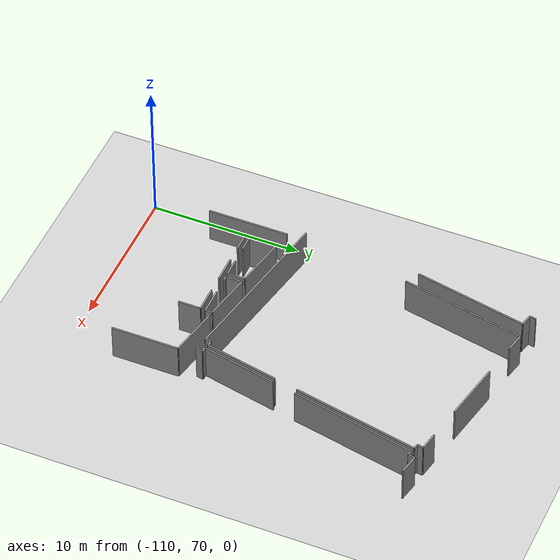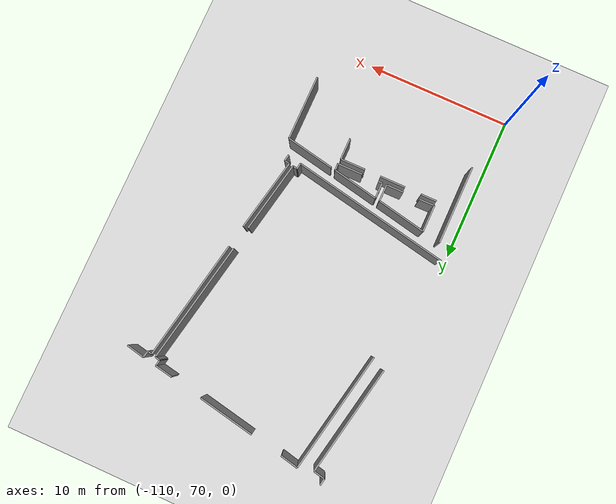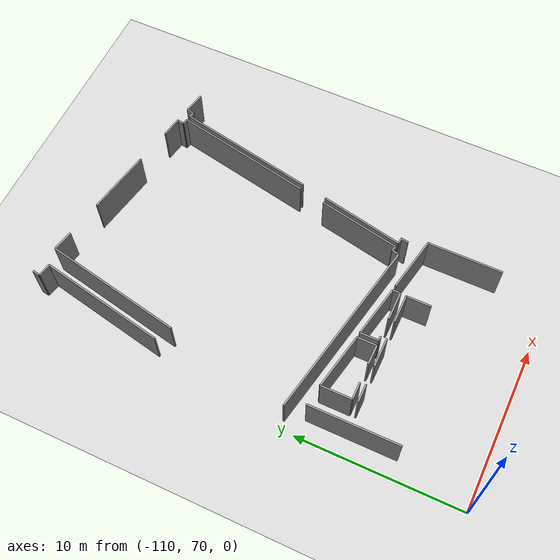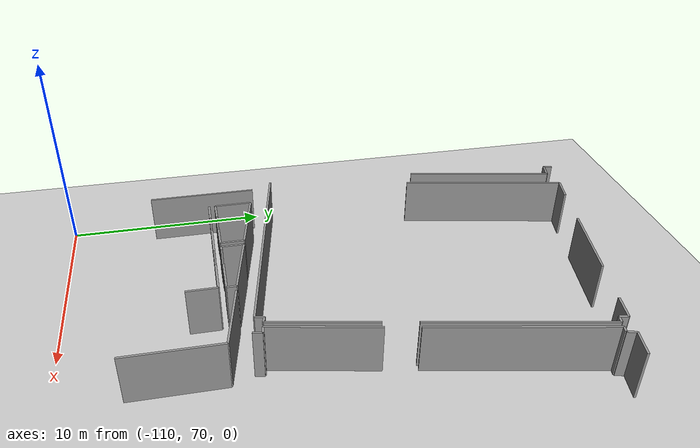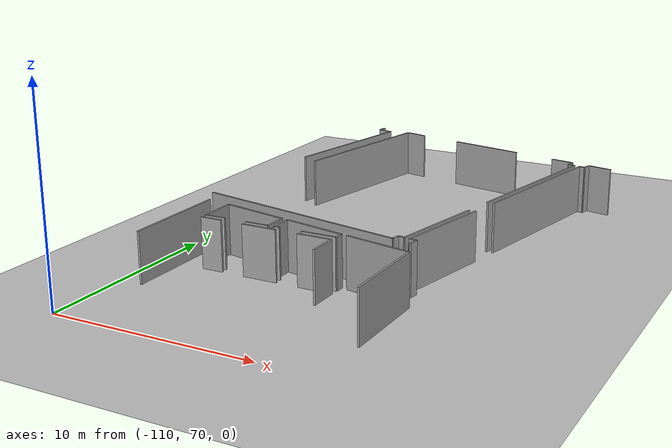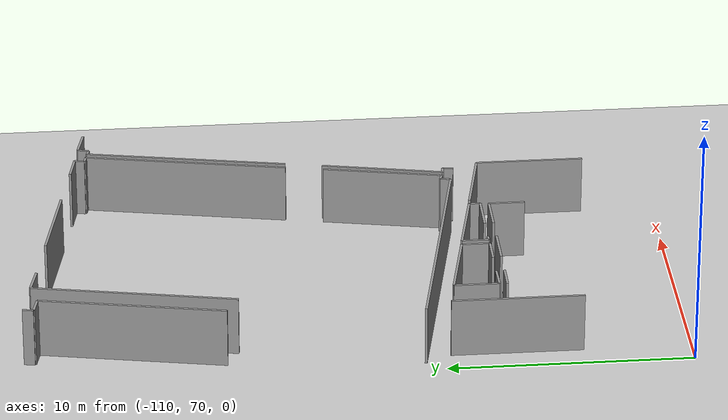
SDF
<sdf version="1.6">
 <world name="default">
  <model name="ground_plane">
   <static>1</static>
   <link name="link">
    <collision name="collision">
     <geometry><plane><normal>0 0 1</normal><size>100 100</size></plane></geometry>
     <surface><friction><ode><mu>100</mu><mu2>50</mu2></ode></friction></surface>
    </collision>
    <visual name="visual">
     <cast_shadows>0</cast_shadows>
     <geometry><plane><normal>0 0 1</normal><size>100 100</size></plane></geometry>
     <material>
      <script><uri>file://media/materials/scripts/gazebo.material</uri><name>Gazebo/Grey</name></script>
     </material>
    </visual>
   </link>
  </model>
  <model name="0510045922_A-40">
   <static>1</static>
   <link name="Wall_7">
    <collision name="Wall_7_Collision">
     <geometry><box><size>0.452917116611 0.1 2.5</size></box></geometry>
     <pose>0.226458558305 0 1.25 0 0 0</pose>
    </collision>
    <visual name="Wall_7_Visual">
     <pose>0.226458558305 0 1.25 0 0 0</pose>
     <geometry><box><size>0.452917116611 0.1 2.5</size></box></geometry>
     <material>
      <script><uri>file://media/materials/scripts/gazebo.material</uri><name>Gazebo/Grey</name></script>
      <ambient>1 1 1 1</ambient>
     </material>
    </visual>
    <pose>25.997127788 -4.38924826841 0 0 0 -1.75421371071</pose>
   </link>
   <link name="Wall_8">
    <collision name="Wall_8_Collision">
     <geometry><box><size>0.801102809044 0.1 2.5</size></box></geometry>
     <pose>0.400551404522 0 1.25 0 0 0</pose>
    </collision>
    <visual name="Wall_8_Visual">
     <pose>0.400551404522 0 1.25 0 0 0</pose>
     <geometry><box><size>0.801102809044 0.1 2.5</size></box></geometry>
     <material>
      <script><uri>file://media/materials/scripts/gazebo.material</uri><name>Gazebo/Grey</name></script>
      <ambient>1 1 1 1</ambient>
     </material>
    </visual>
    <pose>25.9145199212 -4.83456821503 0 0 0 -0.212267821891</pose>
   </link>
   <link name="Wall_9">
    <collision name="Wall_9_Collision">
     <geometry><box><size>7.64910427612 0.1 2.5</size></box></geometry>
     <pose>3.82455213806 0 1.25 0 0 0</pose>
    </collision>
    <visual name="Wall_9_Visual">
     <pose>3.82455213806 0 1.25 0 0 0</pose>
     <geometry><box><size>7.64910427612 0.1 2.5</size></box></geometry>
     <material>
      <script><uri>file://media/materials/scripts/gazebo.material</uri><name>Gazebo/Grey</name></script>
      <ambient>1 1 1 1</ambient>
     </material>
    </visual>
    <pose>26.6976424986 -5.00334244138 0 0 0 -1.76409926453</pose>
   </link>
   <link name="Wall_35">
    <collision name="Wall_35_Collision">
     <geometry><box><size>8.41551916089 0.1 2.5</size></box></geometry>
     <pose>4.20775958044 0 1.25 0 0 0</pose>
    </collision>
    <visual name="Wall_35_Visual">
     <pose>4.20775958044 0 1.25 0 0 0</pose>
     <geometry><box><size>8.41551916089 0.1 2.5</size></box></geometry>
     <material>
      <script><uri>file://media/materials/scripts/gazebo.material</uri><name>Gazebo/Grey</name></script>
      <ambient>1 1 1 1</ambient>
     </material>
    </visual>
    <pose>26.1315879774 -13.0124928512 0 0 0 1.3771621296</pose>
   </link>
   <link name="Wall_36">
    <collision name="Wall_36_Collision">
     <geometry><box><size>1.24280667048 0.1 2.5</size></box></geometry>
     <pose>0.621403335242 0 1.25 0 0 0</pose>
    </collision>
    <visual name="Wall_36_Visual">
     <pose>0.621403335242 0 1.25 0 0 0</pose>
     <geometry><box><size>1.24280667048 0.1 2.5</size></box></geometry>
     <material>
      <script><uri>file://media/materials/scripts/gazebo.material</uri><name>Gazebo/Grey</name></script>
      <ambient>1 1 1 1</ambient>
     </material>
    </visual>
    <pose>27.7509563449 -4.75424795069 0 0 0 -0.216849919064</pose>
   </link>
   <link name="Wall_37">
    <collision name="Wall_37_Collision">
     <geometry><box><size>3.97844644951 0.1 2.5</size></box></geometry>
     <pose>1.98922322476 0 1.25 0 0 0</pose>
    </collision>
    <visual name="Wall_37_Visual">
     <pose>1.98922322476 0 1.25 0 0 0</pose>
     <geometry><box><size>3.97844644951 0.1 2.5</size></box></geometry>
     <material>
      <script><uri>file://media/materials/scripts/gazebo.material</uri><name>Gazebo/Grey</name></script>
      <ambient>1 1 1 1</ambient>
     </material>
    </visual>
    <pose>31.2118446972 -5.44789985385 0 0 0 -0.19051674492</pose>
   </link>
   <link name="Wall_38">
    <collision name="Wall_38_Collision">
     <geometry><box><size>1.22735672541 0.1 2.5</size></box></geometry>
     <pose>0.613678362705 0 1.25 0 0 0</pose>
    </collision>
    <visual name="Wall_38_Visual">
     <pose>0.613678362705 0 1.25 0 0 0</pose>
     <geometry><box><size>1.22735672541 0.1 2.5</size></box></geometry>
     <material>
      <script><uri>file://media/materials/scripts/gazebo.material</uri><name>Gazebo/Grey</name></script>
      <ambient>1 1 1 1</ambient>
     </material>
    </visual>
    <pose>37.3423651268 -6.64101162865 0 0 0 -0.185373393346</pose>
   </link>
   <link name="Wall_39">
    <collision name="Wall_39_Collision">
     <geometry><box><size>0.418908949307 0.1 2.5</size></box></geometry>
     <pose>0.209454474653 0 1.25 0 0 0</pose>
    </collision>
    <visual name="Wall_39_Visual">
     <pose>0.209454474653 0 1.25 0 0 0</pose>
     <geometry><box><size>0.418908949307 0.1 2.5</size></box></geometry>
     <material>
      <script><uri>file://media/materials/scripts/gazebo.material</uri><name>Gazebo/Grey</name></script>
      <ambient>1 1 1 1</ambient>
     </material>
    </visual>
    <pose>38.5486941603 -6.86723009468 0 0 0 -1.75569699962</pose>
   </link>
   <link name="Wall_40">
    <collision name="Wall_40_Collision">
     <geometry><box><size>0.352503447492 0.1 2.5</size></box></geometry>
     <pose>0.176251723746 0 1.25 0 0 0</pose>
    </collision>
    <visual name="Wall_40_Visual">
     <pose>0.176251723746 0 1.25 0 0 0</pose>
     <geometry><box><size>0.352503447492 0.1 2.5</size></box></geometry>
     <material>
      <script><uri>file://media/materials/scripts/gazebo.material</uri><name>Gazebo/Grey</name></script>
      <ambient>1 1 1 1</ambient>
     </material>
    </visual>
    <pose>38.4716782106 -7.27899853848 0 0 0 -0.218043261613</pose>
   </link>
   <link name="Wall_41">
    <collision name="Wall_41_Collision">
     <geometry><box><size>8.49357660351 0.1 2.5</size></box></geometry>
     <pose>4.24678830176 0 1.25 0 0 0</pose>
    </collision>
    <visual name="Wall_41_Visual">
     <pose>4.24678830176 0 1.25 0 0 0</pose>
     <geometry><box><size>8.49357660351 0.1 2.5</size></box></geometry>
     <material>
      <script><uri>file://media/materials/scripts/gazebo.material</uri><name>Gazebo/Grey</name></script>
      <ambient>1 1 1 1</ambient>
     </material>
    </visual>
    <pose>38.8158352926 -7.35525195399 0 0 0 -1.76323846854</pose>
   </link>
   <link name="Wall_42">
    <collision name="Wall_42_Collision">
     <geometry><box><size>4.99358772921 0.1 2.5</size></box></geometry>
     <pose>2.49679386461 0 1.25 0 0 0</pose>
    </collision>
    <visual name="Wall_42_Visual">
     <pose>2.49679386461 0 1.25 0 0 0</pose>
     <geometry><box><size>4.99358772921 0.1 2.5</size></box></geometry>
     <material>
      <script><uri>file://media/materials/scripts/gazebo.material</uri><name>Gazebo/Grey</name></script>
      <ambient>1 1 1 1</ambient>
     </material>
    </visual>
    <pose>36.8980618924 -17.2605706297 0 0 0 -1.76518715399</pose>
   </link>
   <link name="Wall_43">
    <collision name="Wall_43_Collision">
     <geometry><box><size>0.318166050021 0.1 2.5</size></box></geometry>
     <pose>0.15908302501 0 1.25 0 0 0</pose>
    </collision>
    <visual name="Wall_43_Visual">
     <pose>0.15908302501 0 1.25 0 0 0</pose>
     <geometry><box><size>0.318166050021 0.1 2.5</size></box></geometry>
     <material>
      <script><uri>file://media/materials/scripts/gazebo.material</uri><name>Gazebo/Grey</name></script>
      <ambient>1 1 1 1</ambient>
     </material>
    </visual>
    <pose>35.9334561861 -22.1601067548 0 0 0 2.90203924241</pose>
   </link>
   <link name="Wall_44">
    <collision name="Wall_44_Collision">
     <geometry><box><size>0.423587246568 0.1 2.5</size></box></geometry>
     <pose>0.211793623284 0 1.25 0 0 0</pose>
    </collision>
    <visual name="Wall_44_Visual">
     <pose>0.211793623284 0 1.25 0 0 0</pose>
     <geometry><box><size>0.423587246568 0.1 2.5</size></box></geometry>
     <material>
      <script><uri>file://media/materials/scripts/gazebo.material</uri><name>Gazebo/Grey</name></script>
      <ambient>1 1 1 1</ambient>
     </material>
    </visual>
    <pose>35.6243756752 -22.0846158734 0 0 0 -1.74936172082</pose>
   </link>
   <link name="Wall_45">
    <collision name="Wall_45_Collision">
     <geometry><box><size>11.0613959903 0.1 2.5</size></box></geometry>
     <pose>5.53069799515 0 1.25 0 0 0</pose>
    </collision>
    <visual name="Wall_45_Visual">
     <pose>5.53069799515 0 1.25 0 0 0</pose>
     <geometry><box><size>11.0613959903 0.1 2.5</size></box></geometry>
     <material>
      <script><uri>file://media/materials/scripts/gazebo.material</uri><name>Gazebo/Grey</name></script>
      <ambient>1 1 1 1</ambient>
     </material>
    </visual>
    <pose>35.5491389718 -22.5014678782 0 0 0 2.95133097754</pose>
   </link>
   <link name="Wall_46">
    <collision name="Wall_46_Collision">
     <geometry><box><size>5.09213409407 0.1 2.5</size></box></geometry>
     <pose>2.54606704704 0 1.25 0 0 0</pose>
    </collision>
    <visual name="Wall_46_Visual">
     <pose>2.54606704704 0 1.25 0 0 0</pose>
     <geometry><box><size>5.09213409407 0.1 2.5</size></box></geometry>
     <material>
      <script><uri>file://media/materials/scripts/gazebo.material</uri><name>Gazebo/Grey</name></script>
      <ambient>1 1 1 1</ambient>
     </material>
    </visual>
    <pose>36.2102560844 -22.2208553091 0 0 0 1.37069891746</pose>
   </link>
   <link name="Wall_47">
    <collision name="Wall_47_Collision">
     <geometry><box><size>8.43786062008 0.1 2.5</size></box></geometry>
     <pose>4.21893031004 0 1.25 0 0 0</pose>
    </collision>
    <visual name="Wall_47_Visual">
     <pose>4.21893031004 0 1.25 0 0 0</pose>
     <geometry><box><size>8.43786062008 0.1 2.5</size></box></geometry>
     <material>
      <script><uri>file://media/materials/scripts/gazebo.material</uri><name>Gazebo/Grey</name></script>
      <ambient>1 1 1 1</ambient>
     </material>
    </visual>
    <pose>37.5116477092 -15.6978839677 0 0 0 1.38059641745</pose>
   </link>
   <link name="Wall_48">
    <collision name="Wall_48_Collision">
     <geometry><box><size>0.303000068013 0.1 2.5</size></box></geometry>
     <pose>0.151500034007 0 1.25 0 0 0</pose>
    </collision>
    <visual name="Wall_48_Visual">
     <pose>0.151500034007 0 1.25 0 0 0</pose>
     <geometry><box><size>0.303000068013 0.1 2.5</size></box></geometry>
     <material>
      <script><uri>file://media/materials/scripts/gazebo.material</uri><name>Gazebo/Grey</name></script>
      <ambient>1 1 1 1</ambient>
     </material>
    </visual>
    <pose>39.1068691618 -7.41218783758 0 0 0 -0.250065089251</pose>
   </link>
   <link name="Wall_49">
    <collision name="Wall_49_Collision">
     <geometry><box><size>0.468457045048 0.1 2.5</size></box></geometry>
     <pose>0.234228522524 0 1.25 0 0 0</pose>
    </collision>
    <visual name="Wall_49_Visual">
     <pose>0.234228522524 0 1.25 0 0 0</pose>
     <geometry><box><size>0.468457045048 0.1 2.5</size></box></geometry>
     <material>
      <script><uri>file://media/materials/scripts/gazebo.material</uri><name>Gazebo/Grey</name></script>
      <ambient>1 1 1 1</ambient>
     </material>
    </visual>
    <pose>39.4004448116 -7.48717036284 0 0 0 1.34200472039</pose>
   </link>
   <link name="Wall_50">
    <collision name="Wall_50_Collision">
     <geometry><box><size>1.26762572395 0.1 2.5</size></box></geometry>
     <pose>0.633812861977 0 1.25 0 0 0</pose>
    </collision>
    <visual name="Wall_50_Visual">
     <pose>0.633812861977 0 1.25 0 0 0</pose>
     <geometry><box><size>1.26762572395 0.1 2.5</size></box></geometry>
     <material>
      <script><uri>file://media/materials/scripts/gazebo.material</uri><name>Gazebo/Grey</name></script>
      <ambient>1 1 1 1</ambient>
     </material>
    </visual>
    <pose>39.5066912372 -7.03092075999 0 0 0 -0.208642529363</pose>
   </link>
   <link name="Wall_60">
    <collision name="Wall_60_Collision">
     <geometry><box><size>0.452214757318 0.1 2.5</size></box></geometry>
     <pose>0.226107378659 0 1.25 0 0 0</pose>
    </collision>
    <visual name="Wall_60_Visual">
     <pose>0.226107378659 0 1.25 0 0 0</pose>
     <geometry><box><size>0.452214757318 0.1 2.5</size></box></geometry>
     <material>
      <script><uri>file://media/materials/scripts/gazebo.material</uri><name>Gazebo/Grey</name></script>
      <ambient>1 1 1 1</ambient>
     </material>
    </visual>
    <pose>36.4913770096 -22.7040477855 0 0 0 1.40592486246</pose>
   </link>
   <link name="Wall_61">
    <collision name="Wall_61_Collision">
     <geometry><box><size>0.3572734507 0.1 2.5</size></box></geometry>
     <pose>0.17863672535 0 1.25 0 0 0</pose>
    </collision>
    <visual name="Wall_61_Visual">
     <pose>0.17863672535 0 1.25 0 0 0</pose>
     <geometry><box><size>0.3572734507 0.1 2.5</size></box></geometry>
     <material>
      <script><uri>file://media/materials/scripts/gazebo.material</uri><name>Gazebo/Grey</name></script>
      <ambient>1 1 1 1</ambient>
     </material>
    </visual>
    <pose>36.5655970007 -22.2579653047 0 0 0 3.03753495948</pose>
   </link>
   <link name="Wall_332">
    <collision name="Wall_332_Collision">
     <geometry><box><size>1.84329923111 0.1 2.5</size></box></geometry>
     <pose>0.921649615556 0 1.25 0 0 0</pose>
    </collision>
    <visual name="Wall_332_Visual">
     <pose>0.921649615556 0 1.25 0 0 0</pose>
     <geometry><box><size>1.84329923111 0.1 2.5</size></box></geometry>
     <material>
      <script><uri>file://media/materials/scripts/gazebo.material</uri><name>Gazebo/Grey</name></script>
      <ambient>1 1 1 1</ambient>
     </material>
    </visual>
    <pose>26.5067547817 -23.5354641927 0 0 0 1.57079632679</pose>
   </link>
   <link name="Wall_333">
    <collision name="Wall_333_Collision">
     <geometry><box><size>3.43181488667 0.1 2.5</size></box></geometry>
     <pose>1.71590744334 0 1.25 0 0 0</pose>
    </collision>
    <visual name="Wall_333_Visual">
     <pose>1.71590744334 0 1.25 0 0 0</pose>
     <geometry><box><size>3.43181488667 0.1 2.5</size></box></geometry>
     <material>
      <script><uri>file://media/materials/scripts/gazebo.material</uri><name>Gazebo/Grey</name></script>
      <ambient>1 1 1 1</ambient>
     </material>
    </visual>
    <pose>26.5067547817 -21.6921649616 0 0 0 -0.196800019213</pose>
   </link>
   <link name="Wall_334">
    <collision name="Wall_334_Collision">
     <geometry><box><size>1.15879773782 0.1 2.5</size></box></geometry>
     <pose>0.579398868908 0 1.25 0 0 0</pose>
    </collision>
    <visual name="Wall_334_Visual">
     <pose>0.579398868908 0 1.25 0 0 0</pose>
     <geometry><box><size>1.15879773782 0.1 2.5</size></box></geometry>
     <material>
      <script><uri>file://media/materials/scripts/gazebo.material</uri><name>Gazebo/Grey</name></script>
      <ambient>1 1 1 1</ambient>
     </material>
    </visual>
    <pose>29.8723263646 -22.3631950181 0 0 0 -1.57079632679</pose>
   </link>
   <link name="Wall_335">
    <collision name="Wall_335_Collision">
     <geometry><box><size>1.18726567961 0.1 2.5</size></box></geometry>
     <pose>0.593632839804 0 1.25 0 0 0</pose>
    </collision>
    <visual name="Wall_335_Visual">
     <pose>0.593632839804 0 1.25 0 0 0</pose>
     <geometry><box><size>1.18726567961 0.1 2.5</size></box></geometry>
     <material>
      <script><uri>file://media/materials/scripts/gazebo.material</uri><name>Gazebo/Grey</name></script>
      <ambient>1 1 1 1</ambient>
     </material>
    </visual>
    <pose>29.8723263646 -23.5219927559 0 0 0 3.14159265359</pose>
   </link>
   <link name="Wall_336">
    <collision name="Wall_336_Collision">
     <geometry><box><size>1.03815057217 0.1 2.5</size></box></geometry>
     <pose>0.519075286085 0 1.25 0 0 0</pose>
    </collision>
    <visual name="Wall_336_Visual">
     <pose>0.519075286085 0 1.25 0 0 0</pose>
     <geometry><box><size>1.03815057217 0.1 2.5</size></box></geometry>
     <material>
      <script><uri>file://media/materials/scripts/gazebo.material</uri><name>Gazebo/Grey</name></script>
      <ambient>1 1 1 1</ambient>
     </material>
    </visual>
    <pose>27.544817945 -23.5219927559 0 0 0 -3.12861590898</pose>
   </link>
   <link name="Wall_337">
    <collision name="Wall_337_Collision">
     <geometry><box><size>1.10313274449 0.1 2.5</size></box></geometry>
     <pose>0.551566372244 0 1.25 0 0 0</pose>
    </collision>
    <visual name="Wall_337_Visual">
     <pose>0.551566372244 0 1.25 0 0 0</pose>
     <geometry><box><size>1.10313274449 0.1 2.5</size></box></geometry>
     <material>
      <script><uri>file://media/materials/scripts/gazebo.material</uri><name>Gazebo/Grey</name></script>
      <ambient>1 1 1 1</ambient>
     </material>
    </visual>
    <pose>30.1872529707 -23.5138590583 0 0 0 1.57079632679</pose>
   </link>
   <link name="Wall_338">
    <collision name="Wall_338_Collision">
     <geometry><box><size>3.19957209316 0.1 2.5</size></box></geometry>
     <pose>1.59978604658 0 1.25 0 0 0</pose>
    </collision>
    <visual name="Wall_338_Visual">
     <pose>1.59978604658 0 1.25 0 0 0</pose>
     <geometry><box><size>3.19957209316 0.1 2.5</size></box></geometry>
     <material>
      <script><uri>file://media/materials/scripts/gazebo.material</uri><name>Gazebo/Grey</name></script>
      <ambient>1 1 1 1</ambient>
     </material>
    </visual>
    <pose>30.1872529707 -22.4107263138 0 0 0 -0.198392661691</pose>
   </link>
   <link name="Wall_339">
    <collision name="Wall_339_Collision">
     <geometry><box><size>0.460824807778 0.1 2.5</size></box></geometry>
     <pose>0.230412403889 0 1.25 0 0 0</pose>
    </collision>
    <visual name="Wall_339_Visual">
     <pose>0.230412403889 0 1.25 0 0 0</pose>
     <geometry><box><size>0.460824807778 0.1 2.5</size></box></geometry>
     <material>
      <script><uri>file://media/materials/scripts/gazebo.material</uri><name>Gazebo/Grey</name></script>
      <ambient>1 1 1 1</ambient>
     </material>
    </visual>
    <pose>33.324064307 -23.0413420601 0 0 0 -1.57079632679</pose>
   </link>
   <link name="Wall_340">
    <collision name="Wall_340_Collision">
     <geometry><box><size>1.73400266887 0.1 2.5</size></box></geometry>
     <pose>0.867001334435 0 1.25 0 0 0</pose>
    </collision>
    <visual name="Wall_340_Visual">
     <pose>0.867001334435 0 1.25 0 0 0</pose>
     <geometry><box><size>1.73400266887 0.1 2.5</size></box></geometry>
     <material>
      <script><uri>file://media/materials/scripts/gazebo.material</uri><name>Gazebo/Grey</name></script>
      <ambient>1 1 1 1</ambient>
     </material>
    </visual>
    <pose>33.324064307 -23.5021668679 0 0 0 3.14159265359</pose>
   </link>
   <link name="Wall_341">
    <collision name="Wall_341_Collision">
     <geometry><box><size>0.267650816079 0.1 2.5</size></box></geometry>
     <pose>0.13382540804 0 1.25 0 0 0</pose>
    </collision>
    <visual name="Wall_341_Visual">
     <pose>0.13382540804 0 1.25 0 0 0</pose>
     <geometry><box><size>0.267650816079 0.1 2.5</size></box></geometry>
     <material>
      <script><uri>file://media/materials/scripts/gazebo.material</uri><name>Gazebo/Grey</name></script>
      <ambient>1 1 1 1</ambient>
     </material>
    </visual>
    <pose>30.4546482811 -23.5021668679 0 0 0 -3.09789425387</pose>
   </link>
   <link name="Wall_344">
    <collision name="Wall_344_Collision">
     <geometry><box><size>3.35990839554 0.1 2.5</size></box></geometry>
     <pose>1.67995419777 0 1.25 0 0 0</pose>
    </collision>
    <visual name="Wall_344_Visual">
     <pose>1.67995419777 0 1.25 0 0 0</pose>
     <geometry><box><size>3.35990839554 0.1 2.5</size></box></geometry>
     <material>
      <script><uri>file://media/materials/scripts/gazebo.material</uri><name>Gazebo/Grey</name></script>
      <ambient>1 1 1 1</ambient>
     </material>
    </visual>
    <pose>33.628315435 -23.0883649997 0 0 0 -0.193508454416</pose>
   </link>
   <link name="Wall_345">
    <collision name="Wall_345_Collision">
     <geometry><box><size>4.48039651776 0.1 2.5</size></box></geometry>
     <pose>2.24019825888 0 1.25 0 0 0</pose>
    </collision>
    <visual name="Wall_345_Visual">
     <pose>2.24019825888 0 1.25 0 0 0</pose>
     <geometry><box><size>4.48039651776 0.1 2.5</size></box></geometry>
     <material>
      <script><uri>file://media/materials/scripts/gazebo.material</uri><name>Gazebo/Grey</name></script>
      <ambient>1 1 1 1</ambient>
     </material>
    </visual>
    <pose>36.9255131219 -23.7344856072 0 0 0 -1.57079632679</pose>
   </link>
   <link name="Wall_349">
    <collision name="Wall_349_Collision">
     <geometry><box><size>1.08457774671 0.1 2.5</size></box></geometry>
     <pose>0.542288873356 0 1.25 0 0 0</pose>
    </collision>
    <visual name="Wall_349_Visual">
     <pose>0.542288873356 0 1.25 0 0 0</pose>
     <geometry><box><size>1.08457774671 0.1 2.5</size></box></geometry>
     <material>
      <script><uri>file://media/materials/scripts/gazebo.material</uri><name>Gazebo/Grey</name></script>
      <ambient>1 1 1 1</ambient>
     </material>
    </visual>
    <pose>26.4958251255 -23.8590328525 0 0 0 0.0</pose>
   </link>
   <link name="Wall_350">
    <collision name="Wall_350_Collision">
     <geometry><box><size>1.75459109106 0.1 2.5</size></box></geometry>
     <pose>0.87729554553 0 1.25 0 0 0</pose>
    </collision>
    <visual name="Wall_350_Visual">
     <pose>0.87729554553 0 1.25 0 0 0</pose>
     <geometry><box><size>1.75459109106 0.1 2.5</size></box></geometry>
     <material>
      <script><uri>file://media/materials/scripts/gazebo.material</uri><name>Gazebo/Grey</name></script>
      <ambient>1 1 1 1</ambient>
     </material>
    </visual>
    <pose>28.7165787634 -23.8590328525 0 0 0 0.0</pose>
   </link>
   <link name="Wall_351">
    <collision name="Wall_351_Collision">
     <geometry><box><size>1.7012137002 0.1 2.5</size></box></geometry>
     <pose>0.850606850098 0 1.25 0 0 0</pose>
    </collision>
    <visual name="Wall_351_Visual">
     <pose>0.850606850098 0 1.25 0 0 0</pose>
     <geometry><box><size>1.7012137002 0.1 2.5</size></box></geometry>
     <material>
      <script><uri>file://media/materials/scripts/gazebo.material</uri><name>Gazebo/Grey</name></script>
      <ambient>1 1 1 1</ambient>
     </material>
    </visual>
    <pose>31.5788778039 -23.8590328525 0 0 0 0.0</pose>
   </link>
   <link name="Wall_352">
    <collision name="Wall_352_Collision">
     <geometry><box><size>1.48719578064 0.1 2.5</size></box></geometry>
     <pose>0.743597890322 0 1.25 0 0 0</pose>
    </collision>
    <visual name="Wall_352_Visual">
     <pose>0.743597890322 0 1.25 0 0 0</pose>
     <geometry><box><size>1.48719578064 0.1 2.5</size></box></geometry>
     <material>
      <script><uri>file://media/materials/scripts/gazebo.material</uri><name>Gazebo/Grey</name></script>
      <ambient>1 1 1 1</ambient>
     </material>
    </visual>
    <pose>33.2800915041 -23.8590328525 0 0 0 -1.57079632679</pose>
   </link>
   <link name="Wall_481">
    <collision name="Wall_481_Collision">
     <geometry><box><size>5.38628709411 0.1 2.5</size></box></geometry>
     <pose>2.69314354705 0 1.25 0 0 0</pose>
    </collision>
    <visual name="Wall_481_Visual">
     <pose>2.69314354705 0 1.25 0 0 0</pose>
     <geometry><box><size>5.38628709411 0.1 2.5</size></box></geometry>
     <material>
      <script><uri>file://media/materials/scripts/gazebo.material</uri><name>Gazebo/Grey</name></script>
      <ambient>1 1 1 1</ambient>
     </material>
    </visual>
    <pose>25.2508610282 -21.4593378662 0 0 0 -1.57079632679</pose>
   </link>
   <pose>-134.15 101.210036856 0 0 0 0</pose>
  </model>
 </world>
</sdf>
